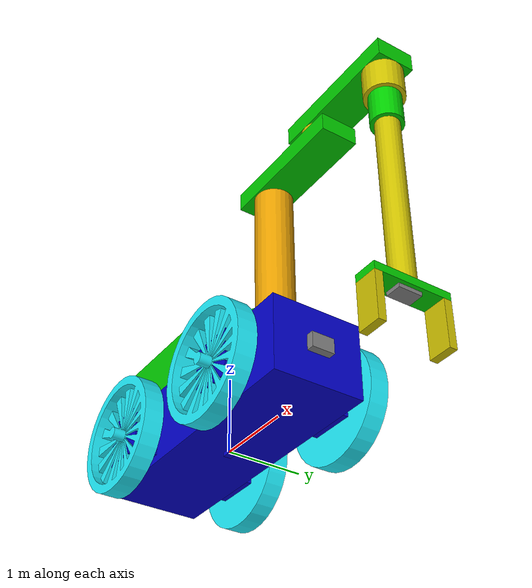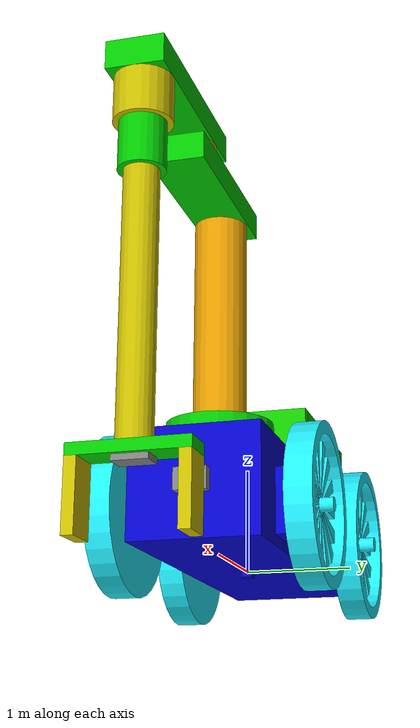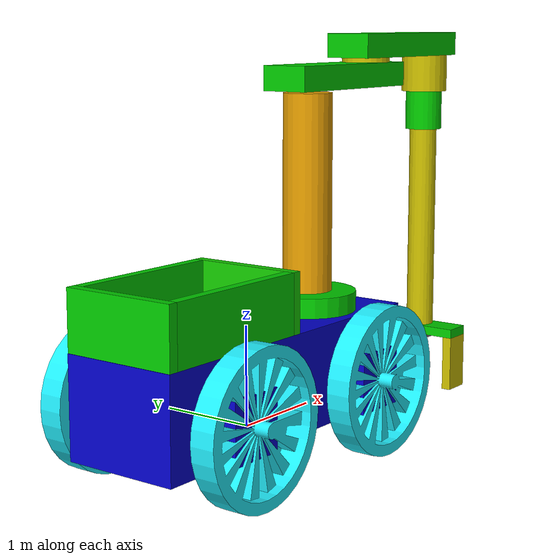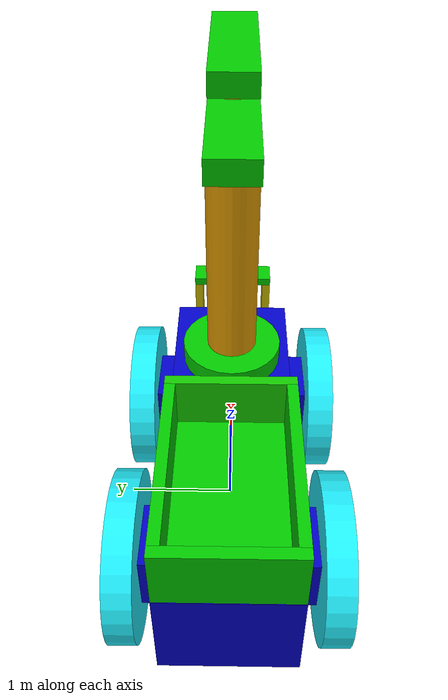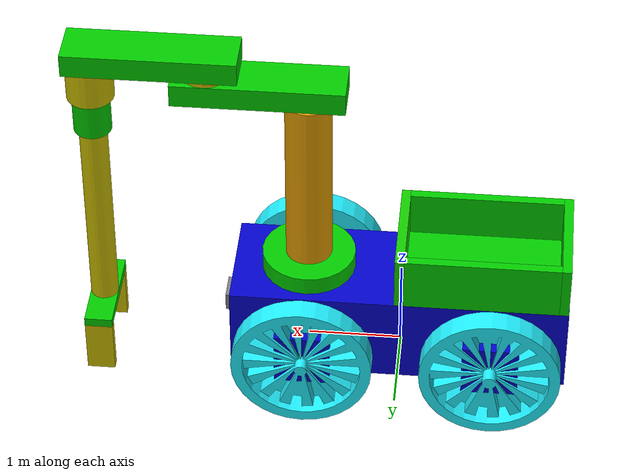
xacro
<?xml version="1.0"?>

<robot name="rover" xmlns:xacro="http://wiki.ros.org/xacro">

    <!-- includes -->
    <xacro:include filename="$(find robot_model_description)/urdf/base/robot_base.urdf.xacro"/>
    <xacro:include filename="$(find robot_model_description)/urdf/utils/utils.urdf.xacro"/>
    <xacro:include filename="$(find robot_model_description)/urdf/arm/scara.urdf.xacro"/>
    <xacro:include filename="$(find robot_model_description)/urdf/arm/gripper.urdf.xacro"/>
    <xacro:include filename="$(find robot_model_description)/urdf/wheels/rover_wheel.urdf.xacro"/>
    <xacro:include filename="$(find robot_model_description)/urdf/sensors/imu_sensor.urdf.xacro"/>
    <xacro:include filename="$(find robot_model_description)/urdf/ros2_control.urdf.xacro"/>
    <xacro:include filename="$(find robot_model_description)/urdf/sensors/camera.urdf.xacro"/>
    <xacro:include filename="$(find robot_model_description)/urdf/sensors/sensors.urdf.xacro"/>

    <!-- properties -->
    <xacro:property name="PI" value="3.1415926535897931"/>

    <!-- arguments -->
    <xacro:arg name="robot_ns" default=""/>
    <xacro:arg name="prefix" default=""/>

    <!-- robot parts -->
    <xacro:utils/>

    <!-- base -->
    <xacro:robot_base/>

    <!-- wheels -->
    <xacro:rover_wheel parent="base_link"/>

    <!-- arm -->
    <xacro:scara parent="base_link"/>
    <xacro:gripper parent="arm_08_link"/>

    <!-- sensors -->
    <xacro:camera parent="base_link"/>
    <xacro:imu_sensor parent="base_link"/>
    <xacro:sensors parent="arm_09_link"/>

    <!-- gazebo ROS control plugins -->
    <xacro:arg name="config_controllers" default="$(find robot_model_description)/config/rover_controllers.yaml"/>
    <xacro:arg name="update_rate" default="30"/>
    <xacro:ros2_control/>

</robot>

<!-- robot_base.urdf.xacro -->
<robot name="rover" xmlns:xacro="http://wiki.ros.org/xacro">

    <xacro:macro name="robot_base" >

        <!-- Properties -->

        <!-- Base Link -->
        <link name="base_footprint">
            <collision name="base_ft_collision">
                <origin rpy="0.00000 0.00000 -0.00000" xyz="0.00000 0.00000 0.00000"/>
                <geometry>
                    <box size="0.10000 0.10000 0.10000"/>
                </geometry>
            </collision>
            <visual name="base_ft">
                <origin rpy="0.00000 0.00000 -0.00000" xyz="0.00000 0.00000 -0.00000"/>
                <material name="turnarrow.004"/>
                <geometry>
                    <box size="0.10000 0.10000 0.10000"/>
                </geometry>
            </visual>
        </link>

        <link name="base_link">
            <collision name="Base_collision">
                <origin rpy="0.00000 0.00000 -0.00000" xyz="0.00000 0.00000 0.00000"/>
                <geometry>
                    <box size="3.60000 1.20000 1.00000"/>
                </geometry>
            </collision>
            <inertial>
                <inertia ixx="101.66667" ixy="0.00000" ixz="0.00000" iyy="581.66664" iyz="0.00000" izz="599.99998"/>
                <origin rpy="0.00000 0.00000 0.00000" xyz="0.00000 0.00000 -0.00000"/>
                <mass value="500.00000"/>
            </inertial>
            <visual name="Base">
                <origin rpy="0.00000 0.00000 -0.00000" xyz="0.00000 0.00000 -0.00000"/>
                <material name="turnarrow.004"/>
                <geometry>
                    <box size="3.60000 1.20000 1.00000"/>
                </geometry>
            </visual>
        </link>

        <link name="box_link">
            <collision name="box_collision">
            <origin rpy="0.00000 0.00000 -0.00000" xyz="-0.12000 0.00000 0.00000"/>
            <geometry>
                <box size="1.65000 1.00000 0.10000"/>
            </geometry>
            </collision>
            <inertial>
            <inertia ixx="0.42083" ixy="0.00000" ixz="0.00000" iyy="1.13854" iyz="0.00000" izz="1.55104"/>
            <origin rpy="0.00000 0.00000 0.00000" xyz="-0.12000 -0.00000 -0.00000"/>
            <mass value="5.00000"/>
            </inertial>
            <visual name="box">
            <origin rpy="0.00000 0.00000 -0.00000" xyz="-0.12000 -0.00000 -0.00000"/>
            <material name="turnarrow.001"/>
            <geometry>
                <box size="1.65000 1.00000 0.10000"/>
            </geometry>
            </visual>
        </link>
        <link name="box_wall1_link">
            <collision name="box_wall1_collision">
            <origin rpy="0.00000 0.00000 -0.00000" xyz="0.00000 0.00000 -0.10000"/>
            <geometry>
                <box size="0.10000 1.20000 0.60000"/>
            </geometry>
            </collision>
            <inertial>
            <inertia ixx="0.75000" ixy="0.00000" ixz="0.00000" iyy="0.15417" iyz="0.00000" izz="0.60417"/>
            <origin rpy="0.00000 0.00000 0.00000" xyz="0.00000 0.00000 -0.10000"/>
            <mass value="5.00000"/>
            </inertial>
            <visual name="box_wall1">
            <origin rpy="0.00000 0.00000 -0.00000" xyz="0.00000 -0.00000 -0.10000"/>
            <material name="turnarrow.001"/>
            <geometry>
                <box size="0.10000 1.20000 0.60000"/>
            </geometry>
            </visual>
        </link>
        <link name="box_wall2_link">
            <collision name="box_wall2_collision">
            <origin rpy="0.00000 0.00000 -0.00000" xyz="-0.12000 -0.00000 -0.10000"/>
            <geometry>
                <box size="1.65000 0.10000 0.60000"/>
            </geometry>
            </collision>
            <inertial>
            <inertia ixx="0.15417" ixy="0.00000" ixz="0.00000" iyy="1.28437" iyz="0.00000" izz="1.13854"/>
            <origin rpy="0.00000 0.00000 0.00000" xyz="-0.12000 0.00000 -0.10000"/>
            <mass value="5.00000"/>
            </inertial>
            <visual name="box_wall2">
            <origin rpy="0.00000 0.00000 -0.00000" xyz="-0.12000 -0.00000 -0.10000"/>
            <material name="turnarrow.001"/>
            <geometry>
                <box size="1.65000 0.10000 0.60000"/>
            </geometry>
            </visual>
        </link>
        <link name="box_wall3_link">
            <collision name="box_wall3_collision">
            <origin rpy="0.00000 0.00000 -0.00000" xyz="-0.12000 -0.00000 -0.10000"/>
            <geometry>
                <box size="1.65000 0.10000 0.60000"/>
            </geometry>
            </collision>
            <inertial>
            <inertia ixx="0.15417" ixy="0.00000" ixz="0.00000" iyy="1.28437" iyz="0.00000" izz="1.13854"/>
            <origin rpy="0.00000 0.00000 0.00000" xyz="-0.12000 0.00000 -0.10000"/>
            <mass value="5.00000"/>
            </inertial>
            <visual name="box_wall3">
            <origin rpy="0.00000 0.00000 -0.00000" xyz="-0.12000 -0.00000 -0.10000"/>
            <material name="turnarrow.001"/>
            <geometry>
                <box size="1.65000 0.10000 0.60000"/>
            </geometry>
            </visual>
        </link>
        <link name="box_wall4_link">
            <collision name="box_wall4_collision">
            <origin rpy="0.00000 0.00000 -0.00000" xyz="0.00000 0.00000 -0.10000"/>
            <geometry>
                <box size="0.10000 1.20000 0.60000"/>
            </geometry>
            </collision>
            <inertial>
            <inertia ixx="0.75000" ixy="0.00000" ixz="0.00000" iyy="0.15417" iyz="0.00000" izz="0.60417"/>
            <origin rpy="0.00000 0.00000 0.00000" xyz="0.00000 0.00000 -0.10000"/>
            <mass value="5.00000"/>
            </inertial>
            <visual name="box_wall4">
            <origin rpy="0.00000 0.00000 -0.00000" xyz="0.00000 0.00000 -0.10000"/>
            <material name="Material.002"/>
            <geometry>
                <box size="0.10000 1.20000 0.60000"/>
            </geometry>
            </visual>
        </link>

        <!-- Base Joint -->
        <joint name="base_footprint_joint" type="fixed">
            <origin rpy="0 0 0" xyz="0 0 0.5"/>
            <parent link="base_footprint"/>
            <child link="base_link"/>
        </joint>

        <joint name="box_link_joint" type="fixed">
            <origin rpy="0.00000 0.00000 -0.00000" xyz="-0.75000 -0.00000 0.55000"/>
            <parent link="base_link"/>
            <child link="box_link"/>
        </joint>

        <joint name="box_wall1_link_joint" type="fixed">
            <origin rpy="0.00000 0.00000 -0.00000" xyz="-0.99500 0.00000 0.35000"/>
            <parent link="box_link"/>
            <child link="box_wall1_link"/>
        </joint>

        <joint name="box_wall2_link_joint" type="fixed">
            <origin rpy="0.00000 0.00000 -0.00000" xyz="0.00000 -0.55000 0.35000"/>
            <parent link="box_link"/>
            <child link="box_wall2_link"/>
        </joint>

        <joint name="box_wall3_link_joint" type="fixed">
            <origin rpy="0.00000 0.00000 -0.00000" xyz="0.00000 0.55000 0.35000"/>
            <parent link="box_link"/>
            <child link="box_wall3_link"/>
        </joint>

        <joint name="box_wall4_link_joint" type="fixed">
            <origin rpy="0.00000 0.00000 -0.00000" xyz="0.75000 0.00000 0.35000"/>
            <parent link="box_link"/>
            <child link="box_wall4_link"/>
        </joint>

    </xacro:macro>

</robot>

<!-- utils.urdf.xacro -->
<robot name="rover" xmlns:xacro="http://wiki.ros.org/xacro">

  <xacro:macro name="utils" >

    <material name="Material.001">
      <color rgba="0.12941 0.94118 1.00000 1.00000"/>
    </material>
    <material name="Material.002">
      <color rgba="0.07843 0.80000 0.00000 1.00000"/>
    </material>
    <material name="turnarrow">
      <color rgba="0.80000 0.74510 0.00000 1.00000"/>
    </material>
    <material name="turnarrow.001">
      <color rgba="0.00784 0.80000 0.00000 1.00000"/>
    </material>
    <material name="turnarrow.004">
      <color rgba="0.01176 0.00784 0.80000 1.00000"/>
    </material>

  </xacro:macro>
</robot>

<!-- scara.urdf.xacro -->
<robot name="rover" xmlns:xacro="http://wiki.ros.org/xacro">

  <xacro:macro name="scara" params="parent" >

    <!-- Base Link -->
    <link name="arm_01_link">
        <collision name="arm_01_collision">
        <origin rpy="0.00000 0.00000 -0.00000" xyz="0.00000 0.00000 0.00000"/>
        <geometry>
            <cylinder radius="0.50000" length="0.20000"/>
        </geometry>
        </collision>
        <visual name="arm_01">
        <origin rpy="0.00000 0.00000 -0.00000" xyz="0.00000 0.00000 0.00000"/>
        <material name="turnarrow.001"/>
        <geometry>
            <cylinder radius="0.50000" length="0.20000"/>
        </geometry>
        </visual>
        <inertial>
            <mass value="1.0"/>
            <origin xyz="0 0 0"/>
            <inertia ixx="0.1" ixy="0" ixz="0" iyy="0.1" iyz="0" izz="0.1"/>
        </inertial>
    </link>
    <link name="arm_02_link">
        <collision name="arm_02_collision">
        <origin rpy="0.00000 0.00000 -0.00000" xyz="0.00000 -0.00000 0.00000"/>
        <geometry>
            <cylinder radius="0.25000" length="2.00000"/>
        </geometry>
        </collision>
        <visual name="arm_02">
        <origin rpy="0.00000 0.00000 -0.00000" xyz="0.00000 -0.00000 0.00000"/>

        <geometry>
            <cylinder radius="0.25000" length="2.00000"/>
        </geometry>
        </visual>
        <inertial>
            <mass value="1.0"/>
            <origin xyz="0 0 0"/>
            <inertia ixx="0.1" ixy="0" ixz="0" iyy="0.1" iyz="0" izz="0.1"/>
        </inertial>
    </link>
    <link name="arm_03_link">
        <collision name="arm_03_collision">
        <origin rpy="0.00000 0.00000 -0.00000" xyz="0.00000 0.00000 -0.00000"/>
        <geometry>
            <box size="1.80000 0.50000 0.25000"/>
        </geometry>
        </collision>
        <visual name="arm_03">
        <origin rpy="0.00000 0.00000 -0.00000" xyz="0.00000 0.00000 -0.00000"/>
        <material name="turnarrow.001"/>
        <geometry>
            <box size="1.80000 0.50000 0.25000"/>
        </geometry>
        </visual>
        <inertial>
            <mass value="1.0"/>
            <origin xyz="0 0 0"/>
            <inertia ixx="0.1" ixy="0" ixz="0" iyy="0.1" iyz="0" izz="0.1"/>
        </inertial>
    </link>
    <link name="arm_04_link">
        <collision name="arm_04_collision">
        <origin rpy="0.00000 0.00000 -0.00000" xyz="0.00000 0.00000 0.00000"/>
        <geometry>
            <cylinder radius="0.25000" length="0.05000"/>
        </geometry>
        </collision>
        <visual name="arm_04">
        <origin rpy="0.00000 0.00000 -0.00000" xyz="0.00000 0.00000 0.00000"/>
        <material name="turnarrow"/>
        <geometry>
            <cylinder radius="0.25000" length="0.05000"/>
        </geometry>
        </visual>
        <inertial>
            <mass value="1.0"/>
            <origin xyz="0 0 0"/>
            <inertia ixx="0.1" ixy="0" ixz="0" iyy="0.1" iyz="0" izz="0.1"/>
        </inertial>
    </link>
    <link name="arm_05_link">
        <collision name="arm_05_collision">
        <origin rpy="0.00000 0.00000 -0.00000" xyz="0.00000 0.00000 0.00000"/>
        <geometry>
            <box size="1.80000 0.50000 0.25000"/>
        </geometry>
        </collision>
        <visual name="arm_05">
        <origin rpy="0.00000 0.00000 -0.00000" xyz="0.00000 0.00000 0.00000"/>
        <material name="turnarrow.001"/>
        <geometry>
            <box size="1.80000 0.50000 0.25000"/>
        </geometry>
        </visual>
        <inertial>
            <mass value="1.0"/>
            <origin xyz="0 0 0"/>
            <inertia ixx="0.1" ixy="0" ixz="0" iyy="0.1" iyz="0" izz="0.1"/>
        </inertial>
    </link>
    <link name="arm_06_link">
        <collision name="arm_06_collision">
        <origin rpy="0.00000 0.00000 -0.00000" xyz="-0.00000 -0.00000 0.00000"/>
        <geometry>
            <cylinder radius="0.25000" length="0.40000"/>
        </geometry>
        </collision>
        <visual name="arm_06">
        <origin rpy="0.00000 0.00000 -0.00000" xyz="-0.00000 -0.00000 0.00000"/>
        <material name="turnarrow"/>
        <geometry>
            <cylinder radius="0.25000" length="0.40000"/>
        </geometry>
        </visual>
        <inertial>
            <mass value="1.0"/>
            <origin xyz="0 0 0"/>
            <inertia ixx="0.1" ixy="0" ixz="0" iyy="0.1" iyz="0" izz="0.1"/>
        </inertial>
    </link>
    <link name="arm_07_link">
        <collision name="arm_07_collision">
        <origin rpy="0.00000 0.00000 -0.00000" xyz="-0.00000 -0.00000 0.00000"/>
        <geometry>
            <cylinder radius="0.20000" length="0.50000"/>
        </geometry>
        </collision>
        <visual name="arm_07">
        <origin rpy="0.00000 0.00000 -0.00000" xyz="-0.00000 -0.00000 0.00000"/>
        <material name="turnarrow.001"/>
        <geometry>
            <cylinder radius="0.20000" length="0.50000"/>
        </geometry>
        </visual>
        <inertial>
            <mass value="1.0"/>
            <origin xyz="0 0 0"/>
            <inertia ixx="0.1" ixy="0" ixz="0" iyy="0.1" iyz="0" izz="0.1"/>
        </inertial>
    </link>
    <link name="arm_08_link">
        <collision name="arm_08_collision">
        <origin rpy="0.00000 0.00000 -0.00000" xyz="-0.00000 -0.00000 0.00000"/>
        <geometry>
            <cylinder radius="0.15000" length="2.25000"/>
        </geometry>
        </collision>
        <visual name="arm_08">
        <origin rpy="0.00000 0.00000 -0.00000" xyz="-0.00000 -0.00000 0.00000"/>
        <material name="turnarrow"/>
        <geometry>
            <cylinder radius="0.15000" length="2.25000"/>
        </geometry>
        </visual>
        <inertial>
            <mass value="1.0"/>
            <origin xyz="0 0 0"/>
            <inertia ixx="0.1" ixy="0" ixz="0" iyy="0.1" iyz="0" izz="0.1"/>
        </inertial>
    </link>

    <!-- Base Joint -->
    <joint name="arm_01_link_joint" type="fixed">
        <origin rpy="0.00000 0.00000 -0.00000" xyz="1.00000 0.00000 0.60000"/>
        <parent link="base_link"/>
        <child link="arm_01_link"/>
    </joint>
    <joint name="arm_02_link_joint" type="revolute">
        <limit lower="-3.14000" upper="3.14000" effort="1000" velocity="10.0"/>
        <origin rpy="0.00000 0.00000 -0.00000" xyz="0.00000 -0.00000 1.10000"/>
        <parent link="arm_01_link"/>
        <child link="arm_02_link"/>
        <axis xyz="0.00000 0.00000 1.00000"/>
    </joint>
    <joint name="arm_03_link_joint" type="fixed">
        <origin rpy="0.00000 0.00000 -0.00000" xyz="0.50000 -0.00000 1.15000"/>
        <parent link="arm_02_link"/>
        <child link="arm_03_link"/>
    </joint>
    <joint name="arm_04_link_joint" type="revolute">
        <limit lower="-3.14000" upper="3.14000" effort="1000" velocity="10.0"/>
        <origin rpy="0.00000 0.00000 -0.00000" xyz="0.55000 -0.00000 0.15000"/>
        <parent link="arm_03_link"/>
        <child link="arm_04_link"/>
        <axis xyz="0.00000 0.00000 1.00000"/>
    </joint>
    <joint name="arm_05_link_joint" type="fixed">
        <origin rpy="0.00000 0.00000 -0.00000" xyz="0.55000 0.00000 0.15000"/>
        <parent link="arm_04_link"/>
        <child link="arm_05_link"/>
    </joint>
    <joint name="arm_06_link_joint" type="revolute">
        <limit lower="-3.14000" upper="3.14000" effort="1000" velocity="10.0"/>
        <origin rpy="0.00000 0.00000 -0.00000" xyz="0.65000 -0.00000 -0.32500"/>
        <parent link="arm_05_link"/>
        <child link="arm_06_link"/>
        <axis xyz="0.00000 0.00000 1.00000"/>
    </joint>
    <joint name="arm_07_link_joint" type="fixed">
        <origin rpy="0.00000 0.00000 -0.00000" xyz="0.00000 -0.00000 -0.37500"/>
        <parent link="arm_06_link"/>
        <child link="arm_07_link"/>
    </joint>
    <joint name="arm_08_link_joint" type="prismatic">
        <limit lower="0.00000" upper="2.20000" effort="1000" velocity="100"/>
        <origin rpy="0.00000 0.00000 -0.00000" xyz="0.00000 -0.00000 -1.37500"/>
        <parent link="arm_07_link"/>
        <child link="arm_08_link"/>
        <axis xyz="0.00000 0.00000 1.00000"/>
    </joint>

  </xacro:macro>
</robot>

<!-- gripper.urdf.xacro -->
<robot name="rover" xmlns:xacro="http://wiki.ros.org/xacro">

  <xacro:macro name="gripper" params="parent" >

    <!-- Base Link -->
    <link name="arm_09_link">
        <collision name="arm_09_collision">
        <origin rpy="0.00000 0.00000 -0.00000" xyz="-0.00000 -0.00000 0.00000"/>
        <geometry>
            <box size="0.30000 1.00000 0.10000"/>
        </geometry>
        </collision>
        <visual name="arm_09">
        <origin rpy="0.00000 0.00000 -0.00000" xyz="-0.00000 -0.00000 0.00000"/>
        <material name="turnarrow.001"/>
        <geometry>
            <box size="0.30000 1.00000 0.10000"/>
        </geometry>
        </visual>
        <inertial>
            <mass value="1.0"/>
            <origin xyz="0 0 0"/>
            <inertia ixx="0.1" ixy="0" ixz="0" iyy="0.1" iyz="0" izz="0.1"/>
        </inertial>
    </link>
    <link name="arm_10_link">
        <collision name="arm_10_collision">
        <origin rpy="0.00000 0.00000 -0.00000" xyz="0.00000 0.00000 0.00000"/>
        <geometry>
            <box size="0.30000 0.10000 0.60000"/>
        </geometry>
        </collision>
        <visual name="arm_10">
        <origin rpy="0.00000 0.00000 -0.00000" xyz="-0.00000 0.00000 0.00000"/>
        <material name="turnarrow"/>
        <geometry>
            <box size="0.30000 0.10000 0.60000"/>
        </geometry>
        </visual>
        <inertial>
            <mass value="3.0"/>
            <origin xyz="0 0 0"/>
            <inertia ixx="0.1" ixy="0" ixz="0" iyy="0.1" iyz="0" izz="0.1"/>
        </inertial>
    </link>
    <link name="arm_11_link">
        <collision name="arm_11_collision">
        <origin rpy="0.00000 0.00000 -0.00000" xyz="0.00000 -0.00000 0.00000"/>
        <geometry>
            <box size="0.30000 0.10000 0.60000"/>
        </geometry>
        </collision>
        <visual name="arm_11">
        <origin rpy="0.00000 0.00000 -0.00000" xyz="-0.00000 -0.00000 0.00000"/>
        <material name="turnarrow"/>
        <geometry>
            <box size="0.30000 0.10000 0.60000"/>
        </geometry>
        </visual>
        <inertial>
            <mass value="3.0"/>
            <origin xyz="0 0 0"/>
            <inertia ixx="0.1" ixy="0" ixz="0" iyy="0.1" iyz="0" izz="0.1"/>
        </inertial>
    </link>

    <!-- Base Joint -->
    <joint name="arm_09_link_joint" type="fixed">
        <origin rpy="0.00000 0.00000 -0.00000" xyz="0.00000 0.00000 -1.17500"/>
        <parent link="arm_08_link"/>
        <child link="arm_09_link"/>
    </joint>
    <joint name="arm_10_link_joint" type="prismatic">
        <limit lower="0.00000" upper="0.25000" effort="1000.00000" velocity="100.00000"/>
        <origin rpy="0.00000 0.00000 -0.00000" xyz="-0.00000 0.45000 -0.35000"/>
        <parent link="arm_09_link"/>
        <child link="arm_10_link"/>
        <axis xyz="0.00000 -1.00000 0.00000"/>
    </joint>
    <joint name="arm_11_link_joint" type="prismatic">
        <limit lower="0.00000" upper="0.25000" effort="1000.00000" velocity="100.00000"/>
        <origin rpy="0.00000 0.00000 -0.00000" xyz="0.00000 -0.45000 -0.35000"/>
        <parent link="arm_09_link"/>
        <child link="arm_11_link"/>
        <axis xyz="0.00000 1.00000 0.00000"/>
    </joint>

  </xacro:macro>
</robot>

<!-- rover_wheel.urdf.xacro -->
<robot name="rover" xmlns:xacro="http://wiki.ros.org/xacro">

  <xacro:macro name="rover_wheel"  params="parent">

    <joint name="left_back_sop_link_joint" type="fixed">
        <origin rpy="0.00000 0.00000 -0.00000" xyz="-1.00000 0.75000 -0.10000"/>
        <parent link="base_link"/>
        <child link="left_back_sop_link"/>
    </joint>

    <joint name="left_back_wheel_link_joint" type="continuous">
        <limit lower="0" upper="0" effort="1000.00000" velocity="100.00000"/>
        <origin rpy="1.57080 0.00000 -3.14159" xyz="-0.00000 0.15000 0.00000"/>
        <parent link="left_back_sop_link"/>
        <child link="left_back_wheel_link"/>
        <axis xyz="0.00000 0.00000 1.00000"/>
    </joint>

    <joint name="left_front_sop_link_joint" type="fixed">
        <origin rpy="0.00000 0.00000 -0.00000" xyz="1.00000 0.75000 -0.10000"/>
        <parent link="base_link"/>
        <child link="left_front_sop_link"/>
    </joint>

    <joint name="left_front_wheel_link_joint" type="continuous">
        <limit lower="0" upper="0" effort="1000.00000" velocity="100.00000"/>
        <origin rpy="1.57080 0.00000 -3.14159" xyz="-0.00000 0.15000 0.00000"/>
        <parent link="left_front_sop_link"/>
        <child link="left_front_wheel_link"/>
        <axis xyz="0.00000 0.00000 1.00000"/>
    </joint>

    <joint name="right_back_sop_link_joint" type="fixed">
        <origin rpy="0.00000 0.00000 -0.00000" xyz="-1.00000 -0.75000 -0.10000"/>
        <parent link="base_link"/>
        <child link="right_back_sop_link"/>
    </joint>

    <joint name="right_back_wheel_link_joint" type="continuous">
        <limit lower="0" upper="0" effort="1000.00000" velocity="100.00000"/>
        <origin rpy="-1.57080 3.14159 3.14159" xyz="0.00000 -0.15000 -0.00000"/>
        <parent link="right_back_sop_link"/>
        <child link="right_back_wheel_link"/>
        <axis xyz="0.00000 0.00000 1.00000"/>
    </joint>

    <joint name="right_front_sop_link_joint" type="fixed">
        <origin rpy="0.00000 0.00000 -0.00000" xyz="1.00000 -0.75000 -0.10000"/>
        <parent link="base_link"/>
        <child link="right_front_sop_link"/>
    </joint>

    <joint name="right_front_wheel_link_joint" type="continuous">
        <limit lower="0" upper="0" effort="1000.00000" velocity="100.00000"/>
        <origin rpy="-1.57080 3.14159 3.14159" xyz="0.00000 -0.15000 -0.00000"/>
        <parent link="right_front_sop_link"/>
        <child link="right_front_wheel_link"/>
        <axis xyz="0.00000 0.00000 1.00000"/>
    </joint>

    <link name="left_back_sop_link">
        <collision name="left_back_sop_collision">
        <origin rpy="0.00000 0.00000 -0.00000" xyz="0.00000 0.00000 -0.00000"/>
        <geometry>
            <box size="0.60000 0.30000 0.60000"/>
        </geometry>
        </collision>
        <inertial>
        <inertia ixx="0.18750" ixy="0.00000" ixz="0.00000" iyy="0.30000" iyz="0.00000" izz="0.18750"/>
        <origin rpy="0.00000 0.00000 0.00000" xyz="-0.00000 0.00000 -0.00000"/>
        <mass value="5.00000"/>
        </inertial>
        <visual name="left_back_sop">
        <origin rpy="0.00000 0.00000 -0.00000" xyz="0.00000 0.00000 -0.00000"/>
        <material name="turnarrow.004"/>
        <geometry>
            <box size="0.60000 0.30000 0.60000"/>
        </geometry>
        </visual>
    </link>

    <link name="left_back_wheel_link">
        <collision name="left_back_wheel_collision">
        <origin rpy="-0.00000 0.00000 -0.00000" xyz="0.00000 0.00000 0.00000"/>
        <geometry>
            <mesh filename="file://$(find robot_model_description)/meshes/dae/Cylinder.023.dae" scale="0.75000 0.75000 0.12500"/>
        </geometry>
        <surface>
        <friction>
            <ode>
            <mu>1.0</mu>
            <mu2>1.0</mu2>
            </ode>
        </friction>
        </surface>
        </collision>
        <inertial>
        <inertia ixx="2.72757" ixy="0.00000" ixz="0.00000" iyy="1.41267" iyz="0.00000" izz="1.41267"/>
        <origin rpy="0.00000 0.00000 0.00000" xyz="0.00000 0.00000 -0.02068"/>
        <mass value="10.00000"/>
        </inertial>
        <visual name="left_back_wheel">
        <origin rpy="-0.00000 0.00000 -0.00000" xyz="0.00000 0.00000 0.00000"/>
        <material name="Material.001"/>
        <geometry>
            <mesh filename="file://$(find robot_model_description)/meshes/dae/Cylinder.023.dae" scale="0.75000 0.75000 0.12500"/>
        </geometry>
        </visual>
    </link>

    <link name="left_front_sop_link">
        <collision name="left_front_sop_collision">
        <origin rpy="0.00000 0.00000 -0.00000" xyz="0.00000 0.00000 -0.00000"/>
        <geometry>
            <box size="0.60000 0.30000 0.60000"/>
        </geometry>
        </collision>
        <inertial>
        <inertia ixx="0.18750" ixy="0.00000" ixz="0.00000" iyy="0.30000" iyz="0.00000" izz="0.18750"/>
        <origin rpy="0.00000 0.00000 0.00000" xyz="0.00000 0.00000 -0.00000"/>
        <mass value="5.00000"/>
        </inertial>
        <visual name="left_front_sop">
        <origin rpy="0.00000 0.00000 -0.00000" xyz="0.00000 0.00000 -0.00000"/>
        <material name="turnarrow.004"/>
        <geometry>
            <box size="0.60000 0.30000 0.60000"/>
        </geometry>
        </visual>
    </link>

    <link name="left_front_wheel_link">
        <collision name="left_front_wheel_collision">
        <origin rpy="-0.00000 0.00000 -0.00000" xyz="-0.00000 0.00000 0.00000"/>
        <geometry>
            <mesh filename="file://$(find robot_model_description)/meshes/dae/Cylinder.021.dae" scale="0.75000 0.75000 0.12500"/>
        </geometry>
        <surface>
        <friction>
            <ode>
            <mu>1.0</mu>
            <mu2>1.0</mu2>
            </ode>
        </friction>
        </surface>
        </collision>
        <inertial>
        <inertia ixx="2.72188" ixy="0.00000" ixz="0.00000" iyy="1.41049" iyz="0.00000" izz="1.41049"/>
        <origin rpy="0.00000 0.00000 0.00000" xyz="-0.00000 0.00000 -0.02178"/>
        <mass value="10.00000"/>
        </inertial>
        <visual name="left_front_wheel">
        <origin rpy="-0.00000 0.00000 -0.00000" xyz="-0.00000 0.00000 0.00000"/>
        <material name="Material.001"/>
        <geometry>
            <mesh filename="file://$(find robot_model_description)/meshes/dae/Cylinder.021.dae" scale="0.75000 0.75000 0.12500"/>
        </geometry>
        </visual>
    </link>

    <link name="right_back_sop_link">
        <collision name="right_back_sop_collision">
        <origin rpy="0.00000 0.00000 -0.00000" xyz="0.00000 0.00000 -0.00000"/>
        <geometry>
            <box size="0.60000 0.30000 0.60000"/>
        </geometry>
        </collision>
        <inertial>
        <inertia ixx="0.18750" ixy="0.00000" ixz="0.00000" iyy="0.30000" iyz="0.00000" izz="0.18750"/>
        <origin rpy="0.00000 0.00000 0.00000" xyz="-0.00000 -0.00000 -0.00000"/>
        <mass value="5.00000"/>
        </inertial>
        <visual name="right_back_sop">
        <origin rpy="0.00000 0.00000 -0.00000" xyz="0.00000 0.00000 -0.00000"/>
        <material name="turnarrow.004"/>
        <geometry>
            <box size="0.60000 0.30000 0.60000"/>
        </geometry>
        </visual>
    </link>

    <link name="right_back_wheel_link">
        <collision name="right_back_wheel_collision">
        <origin rpy="3.14159 0.00000 3.14159" xyz="0.00000 0.00000 -0.00000"/>
        <geometry>
            <mesh filename="file://$(find robot_model_description)/meshes/dae/Cylinder.025.dae" scale="0.75000 0.75000 0.12500"/>
        </geometry>
        <surface>
        <friction>
            <ode>
            <mu>1.0</mu>
            <mu2>1.0</mu2>
            </ode>
        </friction>
        </surface>
        </collision>
        <inertial>
        <inertia ixx="2.72757" ixy="0.00000" ixz="0.00000" iyy="1.41267" iyz="0.00000" izz="1.41267"/>
        <origin rpy="0.00000 0.00000 0.00000" xyz="0.00000 -0.00000 -0.02068"/>
        <mass value="10.00000"/>
        </inertial>
        <visual name="right_back_wheel">
        <origin rpy="3.14159 0.00000 3.14159" xyz="0.00000 0.00000 -0.00000"/>
        <material name="Material.001"/>
        <geometry>
            <mesh filename="file://$(find robot_model_description)/meshes/dae/Cylinder.025.dae" scale="0.75000 0.75000 0.12500"/>
        </geometry>
        </visual>
    </link>

    <link name="right_front_sop_link">
        <collision name="right_front_sop_collision">
        <origin rpy="0.00000 0.00000 -0.00000" xyz="0.00000 0.00000 -0.00000"/>
        <geometry>
            <box size="0.60000 0.30000 0.60000"/>
        </geometry>
        </collision>
        <inertial>
        <inertia ixx="0.18750" ixy="0.00000" ixz="0.00000" iyy="0.30000" iyz="0.00000" izz="0.18750"/>
        <origin rpy="0.00000 0.00000 0.00000" xyz="0.00000 0.00000 -0.00000"/>
        <mass value="5.00000"/>
        </inertial>
        <visual name="right_front_sop">
        <origin rpy="0.00000 0.00000 -0.00000" xyz="0.00000 0.00000 -0.00000"/>
        <material name="turnarrow.004"/>
        <geometry>
            <box size="0.60000 0.30000 0.60000"/>
        </geometry>
        </visual>
    </link>

    <link name="right_front_wheel_link">
        <collision name="right_front_wheel_collision">
        <origin rpy="3.14159 0.00000 3.14159" xyz="0.00000 0.00000 0.00000"/>
        <geometry>
            <mesh filename="file://$(find robot_model_description)/meshes/dae/Cylinder.027.dae" scale="0.75000 0.75000 0.12500"/>
        </geometry>
        <surface>
        <friction>
            <ode>
            <mu>1.0</mu>
            <mu2>1.0</mu2>
            </ode>
        </friction>
        </surface>
        </collision>
        <inertial>
        <inertia ixx="2.72757" ixy="0.00000" ixz="0.00000" iyy="1.41267" iyz="0.00000" izz="1.41267"/>
        <origin rpy="0.00000 0.00000 0.00000" xyz="0.00000 -0.00000 0.02068"/>
        <mass value="10.00000"/>
        </inertial>
        <visual name="right_front_wheel">
        <origin rpy="3.14159 0.00000 3.14159" xyz="0.00000 0.00000 0.00000"/>
        <material name="Material.001"/>
        <geometry>
            <mesh filename="file://$(find robot_model_description)/meshes/dae/Cylinder.027.dae" scale="0.75000 0.75000 0.12500"/>
        </geometry>
        </visual>
    </link>

    <!-- Transmission for left back wheel -->
    <transmission name="left_back_wheel_joint_link">
    <type>transmission_interface/SimpleTransmission</type>
    <joint name="left_back_wheel_link_joint">
        <hardwareInterface>hardware_interface/VelocityJointInterface</hardwareInterface>
    </joint>
    <actuator name="left_back_wheel_motor">
        <mechanicalReduction>1</mechanicalReduction>
    </actuator>
    </transmission>

    <!-- Transmission for left front wheel -->
    <transmission name="left_front_wheel_joint_link">
    <type>transmission_interface/SimpleTransmission</type>
    <joint name="left_front_wheel_link_joint">
        <hardwareInterface>hardware_interface/VelocityJointInterface</hardwareInterface>
    </joint>
    <actuator name="left_front_wheel_motor">
        <mechanicalReduction>1</mechanicalReduction>
    </actuator>
    </transmission>

    <!-- Transmission for right back wheel -->
    <transmission name="right_back_wheel_joint_link">
    <type>transmission_interface/SimpleTransmission</type>
    <joint name="right_back_wheel_link_joint">
        <hardwareInterface>hardware_interface/VelocityJointInterface</hardwareInterface>
    </joint>
    <actuator name="right_back_wheel_motor">
        <mechanicalReduction>1</mechanicalReduction>
    </actuator>
    </transmission>

    <!-- Transmission for right front wheel -->
    <transmission name="right_front_wheel_joint_link">
    <type>transmission_interface/SimpleTransmission</type>
    <joint name="right_front_wheel_link_joint">
        <hardwareInterface>hardware_interface/VelocityJointInterface</hardwareInterface>
    </joint>
    <actuator name="right_front_wheel_motor">
        <mechanicalReduction>1</mechanicalReduction>
    </actuator>
    </transmission>

    <gazebo reference="left_back_wheel_link">
    <mu1>5</mu1>
    <mu2>5</mu2>
    </gazebo>

    <gazebo reference="left_front_wheel_link">
    <mu1>5</mu1>
    <mu2>5</mu2>
    </gazebo>

    <gazebo reference="right_back_wheel_link">
    <mu1>5</mu1>
    <mu2>5</mu2>
    </gazebo>

    <gazebo reference="right_front_wheel_link">
    <mu1>5</mu1>
    <mu2>5</mu2>
    </gazebo>

  </xacro:macro>
</robot>

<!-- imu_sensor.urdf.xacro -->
<robot name="rover" xmlns:xacro="http://wiki.ros.org/xacro">

  <xacro:macro name="imu_sensor" params="parent" >

    <joint name="imu_joint" type="fixed">
      <origin rpy="0.00000 0.00000 0.00000" xyz="0.00000 0.00000 0.00000"/>
      <parent link="${parent}"/>
      <child link="imu_link"/>
    </joint>

    <link name="imu_link">
      <collision name="IMU_collision">
        <origin rpy="0.00000 0.00000 0.00000" xyz="0.00000 0.00000 0.00000"/>
        <geometry>
            <box size="0.10000 0.10000 0.10000"/>
        </geometry>
      </collision>
      <visual name="IMU">
        <origin rpy="0.00000 0.00000 0.00000" xyz="0.00000 0.00000 0.00000"/>
        <material name="Material.001"/>
        <geometry>
          <box size="0.10000 0.10000 0.10000"/>
        </geometry>
      </visual>
    </link>

    <gazebo reference="imu_link">
      <sensor name="IMU" type="imu">
        <always_on>1</always_on>
        <update_rate>30</update_rate>
        <topic>/imu/data</topic>
      </sensor>
    </gazebo>

  </xacro:macro>
</robot>

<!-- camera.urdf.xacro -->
<robot name="rover" xmlns:xacro="http://wiki.ros.org/xacro">

  <xacro:macro name="camera" params="parent" >

    <joint name="camera_link_joint" type="fixed">
      <origin rpy="0.00000 0.00000 0.00000 " xyz="1.85000 0.00000 0.00000"/>
      <parent link="${parent}"/>
      <child link="camera_link"/>
    </joint>

    <link name="camera_link">
        <collision name="camera_collision">
        <origin rpy="0.00000 0.00000 0.00000" xyz="0.00000 0.00000 0.00000"/>
        <geometry>
            <box size="0.10000 0.30000 0.20000"/>
        </geometry>
        </collision>
        <visual name="camera">
            <origin rpy="0.00000 0.00000 0.00000" xyz="0.00000 0.00000 -0.00000"/>
            <material name="gray">
                <color rgba="0.5 0.5 0.5 1"/>
            </material>
            <geometry>
                <box size="0.10000 0.30000 0.20000"/>
            </geometry>
        </visual>
    </link>

    <gazebo reference="camera_link">
      <sensor name="camera" type="camera">
        <visualize>true</visualize>
        <update_rate>30</update_rate>
        <topic>/front_camera/image</topic>
        <camera>
          <horizontal_fov>1.57</horizontal_fov>
          <image>
            <width>640</width>
            <height>480</height>
            <format>R8G8B8</format>
          </image>
          <clip>
            <near>0.10</near>
            <far>15.0</far>
          </clip>
          <noise>
            <type>gaussian</type>
            <mean>0.0</mean>
            <stddev>0.007</stddev>
          </noise>
          <optical_frame_id>camera_link</optical_frame_id>
        </camera>
      </sensor>
    </gazebo>

  </xacro:macro>
</robot>

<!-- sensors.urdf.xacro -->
<robot name="rover" xmlns:xacro="http://wiki.ros.org/xacro">

  <xacro:macro name="sensors"  params="parent">

    <joint name="sensors_link_joint" type="fixed">
      <origin rpy="0.00000 1.57000 0" xyz="0.00000 0.00000 -0.05000"/>
      <parent link="${parent}"/>
      <child link="sensors_link"/>
    </joint>

    <link name="sensors_link">
        <collision name="sensors_collision">
        <origin rpy="0.00000 0.00000 0.00000" xyz="0.00000 0.00000 0.00000"/>
        <geometry>
            <box size="0.10000 0.30000 0.20000"/>
        </geometry>
        </collision>
        <visual name="sensors">
            <origin rpy="0.00000 0.00000 0.00000" xyz="0.00000 0.00000 0.00000"/>
            <material name="gray">
                <color rgba="0.5 0.5 0.5 1"/>
            </material>
            <geometry>
                <box size="0.10000 0.30000 0.20000"/>
            </geometry>
        </visual>
        <inertial>
            <mass value="1.0"/>
            <origin xyz="0 0 0"/>
            <inertia ixx="0.1" ixy="0" ixz="0" iyy="0.1" iyz="0" izz="0.1"/>
        </inertial>
    </link>

    <gazebo reference="sensors_link">
      <sensor name="sensors" type="camera">
        <visualize>true</visualize>
        <update_rate>30</update_rate>
        <topic>/arm_camera/image</topic>
        <camera>
          <horizontal_fov>1.57</horizontal_fov>
          <image>
            <width>640</width>
            <height>480</height>
            <format>R8G8B8</format>
          </image>
          <clip>
            <near>0.10</near>
            <far>15.0</far>
          </clip>
          <noise>
            <type>gaussian</type>
            <mean>0.0</mean>
            <stddev>0.007</stddev>
          </noise>
          <optical_frame_id>sensors_link</optical_frame_id>
        </camera>
      </sensor>
    </gazebo>

  </xacro:macro>
</robot>
